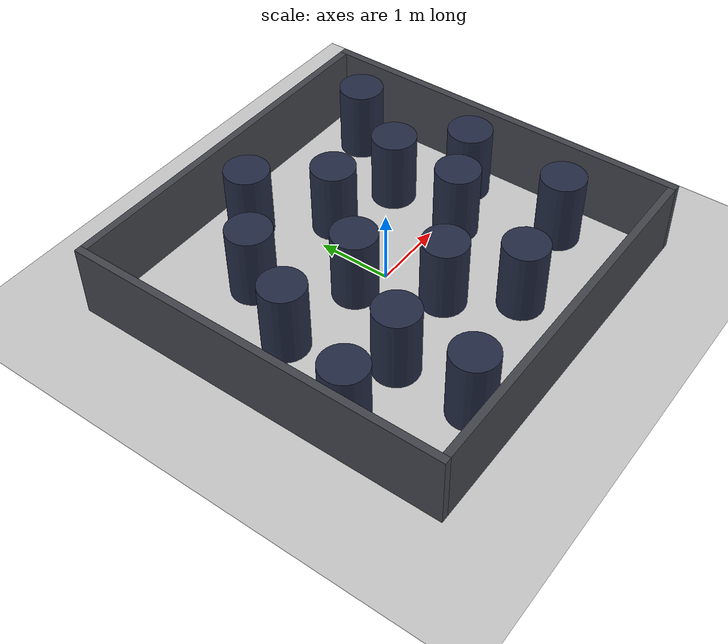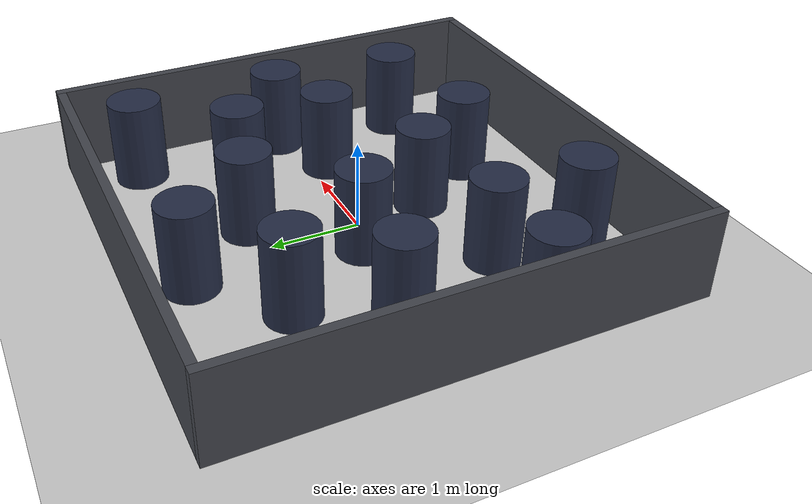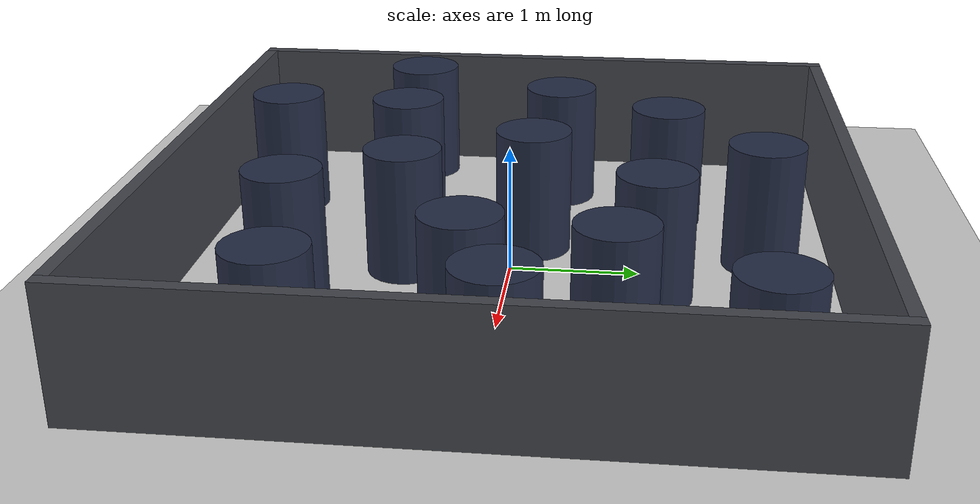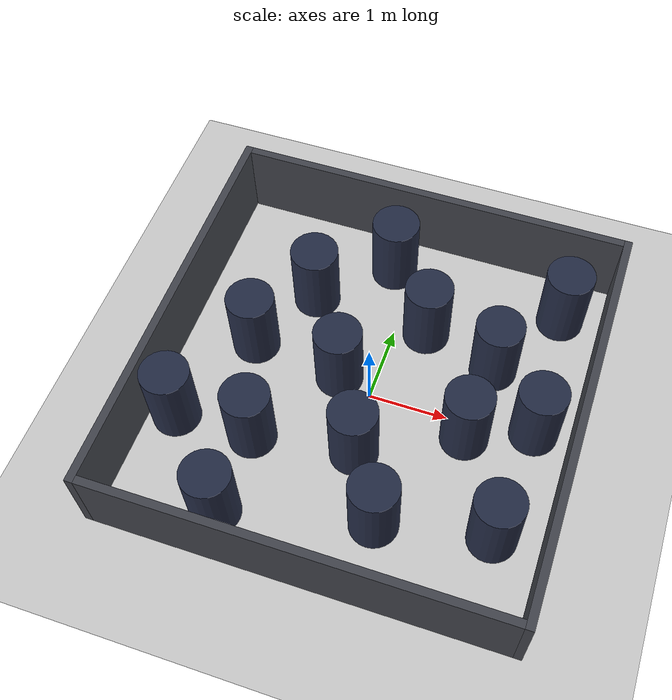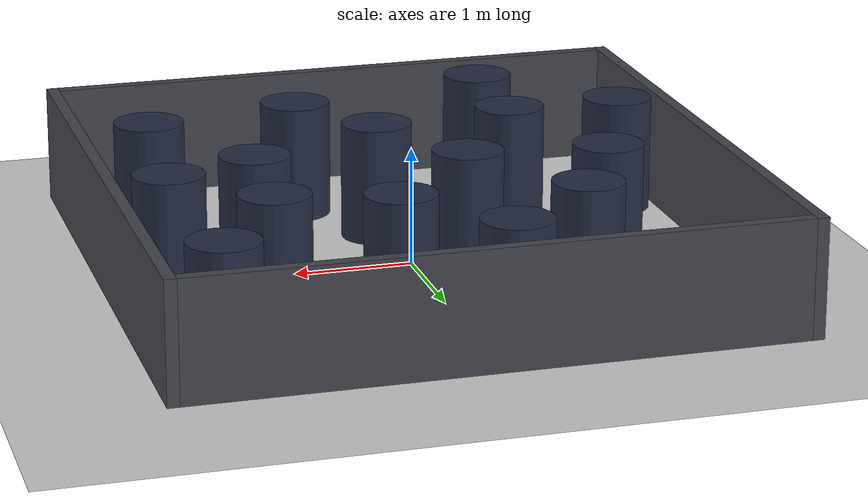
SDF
<sdf version="1.7">
 <world name="default">
  <light name="user_directional_light_0" type="directional">
   <pose>8.82764 2.91095 1 0 -0 0</pose>
   <diffuse>0.5 0.5 0.5 1</diffuse>
   <specular>0.1 0.1 0.1 1</specular>
   <direction>0.1 0.1 -0.9</direction>
   <attenuation>
    <range>20</range>
    <constant>0.5</constant>
    <linear>0.01</linear>
    <quadratic>0.001</quadratic>
   </attenuation>
   <spot><inner_angle>0</inner_angle><outer_angle>0</outer_angle><falloff>0</falloff></spot>
  </light>
  <light name="user_directional_light_1" type="directional">
   <pose>-7.8244 2.91635 1 0 -0 0</pose>
   <diffuse>0.5 0.5 0.5 1</diffuse>
   <specular>0.1 0.1 0.1 1</specular>
   <direction>0.1 0.1 -0.9</direction>
   <attenuation>
    <range>20</range>
    <constant>0.5</constant>
    <linear>0.01</linear>
    <quadratic>0.001</quadratic>
   </attenuation>
   <spot><inner_angle>0</inner_angle><outer_angle>0</outer_angle><falloff>0</falloff></spot>
  </light>
  <light name="user_directional_light_2" type="directional">
   <pose>-7.75772 -4.88479 1 0 -0 0</pose>
   <diffuse>0.5 0.5 0.5 1</diffuse>
   <specular>0.1 0.1 0.1 1</specular>
   <direction>0.1 0.1 -0.9</direction>
   <attenuation>
    <range>20</range>
    <constant>0.5</constant>
    <linear>0.01</linear>
    <quadratic>0.001</quadratic>
   </attenuation>
   <spot><inner_angle>0</inner_angle><outer_angle>0</outer_angle><falloff>0</falloff></spot>
  </light>
  <light name="user_directional_light_3" type="directional">
   <pose>8.88456 -3.92028 1 0 -0 0</pose>
   <diffuse>0.5 0.5 0.5 1</diffuse>
   <specular>0.1 0.1 0.1 1</specular>
   <direction>0.1 0.1 -0.9</direction>
   <attenuation>
    <range>20</range>
    <constant>0.5</constant>
    <linear>0.01</linear>
    <quadratic>0.001</quadratic>
   </attenuation>
   <spot><inner_angle>0</inner_angle><outer_angle>0</outer_angle><falloff>0</falloff></spot>
  </light>
  <model name="ground_plane">
   <static>1</static>
   <link name="link">
    <collision name="collision">
     <geometry><plane><normal>0 0 1</normal><size>100 100</size></plane></geometry>
     <surface>
      <contact><collide_bitmask>65535</collide_bitmask></contact>
      <friction><ode><mu>100</mu><mu2>50</mu2></ode></friction>
     </surface>
    </collision>
    <visual name="visual">
     <cast_shadows>0</cast_shadows>
     <geometry><plane><normal>0 0 1</normal><size>100 100</size></plane></geometry>
     <material>
      <script><uri>file://media/materials/scripts/gazebo.material</uri><name>Gazebo/Grey</name></script>
     </material>
    </visual>
   </link>
  </model>
  <gravity>0 0 -9.8</gravity>
  <magnetic_field>6e-06 2.3e-05 -4.2e-05</magnetic_field>
  <atmosphere type="adiabatic"/>
  <physics type="ode">
   <max_step_size>0.001</max_step_size>
   <real_time_factor>1</real_time_factor>
   <real_time_update_rate>1000</real_time_update_rate>
  </physics>
  <scene><ambient>0.32 0.32 0.32 1</ambient><background>0.7 0.7 0.7 1</background><shadows>1</shadows></scene>
  <spherical_coordinates>
   <surface_model>EARTH_WGS84</surface_model>
   <latitude_deg>0</latitude_deg>
   <longitude_deg>0</longitude_deg>
   <elevation>0</elevation>
   <heading_deg>0</heading_deg>
  </spherical_coordinates>
  <model name="region_wall_left">
   <static>1</static>
   <link name="link">
    <visual name="visual">
     <geometry><box><size>0.1 5.2 1</size></box></geometry>
     <material>
      <ambient>0.17 0.17 0.18 1</ambient>
      <diffuse>0.26 0.27 0.3 1</diffuse>
      <specular>0.02 0.02 0.02 1</specular>
     </material>
    </visual>
    <collision name="collision"><geometry><box><size>0.1 5.2 1</size></box></geometry></collision>
   </link>
   <pose>-2.55 0 0.5 0 -0 0</pose>
  </model>
  <model name="region_wall_right">
   <static>1</static>
   <link name="link">
    <visual name="visual">
     <geometry><box><size>0.1 5.2 1</size></box></geometry>
     <material>
      <ambient>0.17 0.17 0.18 1</ambient>
      <diffuse>0.26 0.27 0.3 1</diffuse>
      <specular>0.02 0.02 0.02 1</specular>
     </material>
    </visual>
    <collision name="collision"><geometry><box><size>0.1 5.2 1</size></box></geometry></collision>
   </link>
   <pose>2.55 0 0.5 0 -0 0</pose>
  </model>
  <model name="region_wall_bottom">
   <static>1</static>
   <link name="link">
    <visual name="visual">
     <geometry><box><size>5 0.1 1</size></box></geometry>
     <material>
      <ambient>0.17 0.17 0.18 1</ambient>
      <diffuse>0.26 0.27 0.3 1</diffuse>
      <specular>0.02 0.02 0.02 1</specular>
     </material>
    </visual>
    <collision name="collision"><geometry><box><size>5 0.1 1</size></box></geometry></collision>
   </link>
   <pose>0 -2.55 0.5 0 -0 0</pose>
  </model>
  <model name="region_wall_top">
   <static>1</static>
   <link name="link">
    <visual name="visual">
     <geometry><box><size>5 0.1 1</size></box></geometry>
     <material>
      <ambient>0.17 0.17 0.18 1</ambient>
      <diffuse>0.26 0.27 0.3 1</diffuse>
      <specular>0.02 0.02 0.02 1</specular>
     </material>
    </visual>
    <collision name="collision"><geometry><box><size>5 0.1 1</size></box></geometry></collision>
   </link>
   <pose>0 2.55 0.5 0 -0 0</pose>
  </model>
  <model name="blue_cylinder_0">
   <static>1</static>
   <link name="link">
    <visual name="visual">
     <geometry><cylinder><radius>0.3</radius><length>1</length></cylinder></geometry>
     <material>
      <ambient>0.06 0.07 0.112 1</ambient>
      <diffuse>0.14 0.17 0.27 1</diffuse>
      <specular>0.02 0.02 0.02 1</specular>
     </material>
    </visual>
    <collision name="collision">
     <geometry><cylinder><radius>0.3</radius><length>1</length></cylinder></geometry>
    </collision>
   </link>
   <pose>-1.16205 -0.990199 0.5 0 -0 0</pose>
  </model>
  <model name="blue_cylinder_1">
   <static>1</static>
   <link name="link">
    <visual name="visual">
     <geometry><cylinder><radius>0.3</radius><length>1</length></cylinder></geometry>
     <material>
      <ambient>0.06 0.07 0.112 1</ambient>
      <diffuse>0.14 0.17 0.27 1</diffuse>
      <specular>0.02 0.02 0.02 1</specular>
     </material>
    </visual>
    <collision name="collision">
     <geometry><cylinder><radius>0.3</radius><length>1</length></cylinder></geometry>
    </collision>
   </link>
   <pose>-1.1253 1.2053 0.5 0 -0 0</pose>
  </model>
  <model name="blue_cylinder_2">
   <static>1</static>
   <link name="link">
    <visual name="visual">
     <geometry><cylinder><radius>0.3</radius><length>1</length></cylinder></geometry>
     <material>
      <ambient>0.06 0.07 0.112 1</ambient>
      <diffuse>0.14 0.17 0.27 1</diffuse>
      <specular>0.02 0.02 0.02 1</specular>
     </material>
    </visual>
    <collision name="collision">
     <geometry><cylinder><radius>0.3</radius><length>1</length></cylinder></geometry>
    </collision>
   </link>
   <pose>0.593385 -1.61139 0.5 0 -0 0</pose>
  </model>
  <model name="blue_cylinder_3">
   <static>1</static>
   <link name="link">
    <visual name="visual">
     <geometry><cylinder><radius>0.3</radius><length>1</length></cylinder></geometry>
     <material>
      <ambient>0.06 0.07 0.112 1</ambient>
      <diffuse>0.14 0.17 0.27 1</diffuse>
      <specular>0.02 0.02 0.02 1</specular>
     </material>
    </visual>
    <collision name="collision">
     <geometry><cylinder><radius>0.3</radius><length>1</length></cylinder></geometry>
    </collision>
   </link>
   <pose>2.05977 0.122062 0.5 0 -0 0</pose>
  </model>
  <model name="blue_cylinder_4">
   <static>1</static>
   <link name="link">
    <visual name="visual">
     <geometry><cylinder><radius>0.3</radius><length>1</length></cylinder></geometry>
     <material>
      <ambient>0.06 0.07 0.112 1</ambient>
      <diffuse>0.14 0.17 0.27 1</diffuse>
      <specular>0.02 0.02 0.02 1</specular>
     </material>
    </visual>
    <collision name="collision">
     <geometry><cylinder><radius>0.3</radius><length>1</length></cylinder></geometry>
    </collision>
   </link>
   <pose>-0.295188 1.95402 0.5 0 -0 0</pose>
  </model>
  <model name="blue_cylinder_5">
   <static>1</static>
   <link name="link">
    <visual name="visual">
     <geometry><cylinder><radius>0.3</radius><length>1</length></cylinder></geometry>
     <material>
      <ambient>0.06 0.07 0.112 1</ambient>
      <diffuse>0.14 0.17 0.27 1</diffuse>
      <specular>0.02 0.02 0.02 1</specular>
     </material>
    </visual>
    <collision name="collision">
     <geometry><cylinder><radius>0.3</radius><length>1</length></cylinder></geometry>
    </collision>
   </link>
   <pose>-1.61664 0.282996 0.5 0 -0 0</pose>
  </model>
  <model name="blue_cylinder_6">
   <static>1</static>
   <link name="link">
    <visual name="visual">
     <geometry><cylinder><radius>0.3</radius><length>1</length></cylinder></geometry>
     <material>
      <ambient>0.06 0.07 0.112 1</ambient>
      <diffuse>0.14 0.17 0.27 1</diffuse>
      <specular>0.02 0.02 0.02 1</specular>
     </material>
    </visual>
    <collision name="collision">
     <geometry><cylinder><radius>0.3</radius><length>1</length></cylinder></geometry>
    </collision>
   </link>
   <pose>0.399175 1.1122 0.5 0 -0 0</pose>
  </model>
  <model name="blue_cylinder_7">
   <static>1</static>
   <link name="link">
    <visual name="visual">
     <geometry><cylinder><radius>0.3</radius><length>1</length></cylinder></geometry>
     <material>
      <ambient>0.06 0.07 0.112 1</ambient>
      <diffuse>0.14 0.17 0.27 1</diffuse>
      <specular>0.02 0.02 0.02 1</specular>
     </material>
    </visual>
    <collision name="collision">
     <geometry><cylinder><radius>0.3</radius><length>1</length></cylinder></geometry>
    </collision>
   </link>
   <pose>1.93179 -1.35131 0.5 0 -0 0</pose>
  </model>
  <model name="blue_cylinder_8">
   <static>1</static>
   <link name="link">
    <visual name="visual">
     <geometry><cylinder><radius>0.3</radius><length>1</length></cylinder></geometry>
     <material>
      <ambient>0.06 0.07 0.112 1</ambient>
      <diffuse>0.14 0.17 0.27 1</diffuse>
      <specular>0.02 0.02 0.02 1</specular>
     </material>
    </visual>
    <collision name="collision">
     <geometry><cylinder><radius>0.3</radius><length>1</length></cylinder></geometry>
    </collision>
   </link>
   <pose>-0.443375 0.143331 0.5 0 -0 0</pose>
  </model>
  <model name="blue_cylinder_9">
   <static>1</static>
   <link name="link">
    <visual name="visual">
     <geometry><cylinder><radius>0.3</radius><length>1</length></cylinder></geometry>
     <material>
      <ambient>0.06 0.07 0.112 1</ambient>
      <diffuse>0.14 0.17 0.27 1</diffuse>
      <specular>0.02 0.02 0.02 1</specular>
     </material>
    </visual>
    <collision name="collision">
     <geometry><cylinder><radius>0.3</radius><length>1</length></cylinder></geometry>
    </collision>
   </link>
   <pose>-2.15361 -1.00728 0.5 0 -0 0</pose>
  </model>
  <model name="blue_cylinder_10">
   <static>1</static>
   <link name="link">
    <visual name="visual">
     <geometry><cylinder><radius>0.3</radius><length>1</length></cylinder></geometry>
     <material>
      <ambient>0.06 0.07 0.112 1</ambient>
      <diffuse>0.14 0.17 0.27 1</diffuse>
      <specular>0.02 0.02 0.02 1</specular>
     </material>
    </visual>
    <collision name="collision">
     <geometry><cylinder><radius>0.3</radius><length>1</length></cylinder></geometry>
    </collision>
   </link>
   <pose>0.07748 -0.813285 0.5 0 -0 0</pose>
  </model>
  <model name="blue_cylinder_11">
   <static>1</static>
   <link name="link">
    <visual name="visual">
     <geometry><cylinder><radius>0.3</radius><length>1</length></cylinder></geometry>
     <material>
      <ambient>0.06 0.07 0.112 1</ambient>
      <diffuse>0.14 0.17 0.27 1</diffuse>
      <specular>0.02 0.02 0.02 1</specular>
     </material>
    </visual>
    <collision name="collision">
     <geometry><cylinder><radius>0.3</radius><length>1</length></cylinder></geometry>
    </collision>
   </link>
   <pose>1.27662 -0.199824 0.5 0 -0 0</pose>
  </model>
  <model name="blue_cylinder_12">
   <static>1</static>
   <link name="link">
    <visual name="visual">
     <geometry><cylinder><radius>0.3</radius><length>1</length></cylinder></geometry>
     <material>
      <ambient>0.06 0.07 0.112 1</ambient>
      <diffuse>0.14 0.17 0.27 1</diffuse>
      <specular>0.02 0.02 0.02 1</specular>
     </material>
    </visual>
    <collision name="collision">
     <geometry><cylinder><radius>0.3</radius><length>1</length></cylinder></geometry>
    </collision>
   </link>
   <pose>1.99009 1.85265 0.5 0 -0 0</pose>
  </model>
  <model name="blue_cylinder_13">
   <static>1</static>
   <link name="link">
    <visual name="visual">
     <geometry><cylinder><radius>0.3</radius><length>1</length></cylinder></geometry>
     <material>
      <ambient>0.06 0.07 0.112 1</ambient>
      <diffuse>0.14 0.17 0.27 1</diffuse>
      <specular>0.02 0.02 0.02 1</specular>
     </material>
    </visual>
    <collision name="collision">
     <geometry><cylinder><radius>0.3</radius><length>1</length></cylinder></geometry>
    </collision>
   </link>
   <pose>-1.19297 -2.03802 0.5 0 -0 0</pose>
  </model>
  <model name="blue_cylinder_14">
   <static>1</static>
   <link name="link">
    <visual name="visual">
     <geometry><cylinder><radius>0.3</radius><length>1</length></cylinder></geometry>
     <material>
      <ambient>0.06 0.07 0.112 1</ambient>
      <diffuse>0.14 0.17 0.27 1</diffuse>
      <specular>0.02 0.02 0.02 1</specular>
     </material>
    </visual>
    <collision name="collision">
     <geometry><cylinder><radius>0.3</radius><length>1</length></cylinder></geometry>
    </collision>
   </link>
   <pose>1.35938 0.849488 0.5 0 -0 0</pose>
  </model>
 </world>
</sdf>
